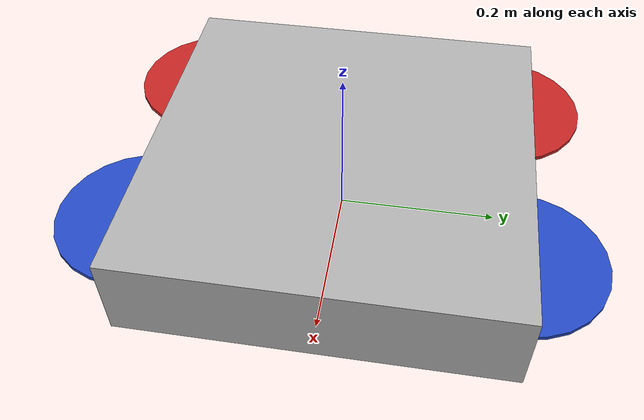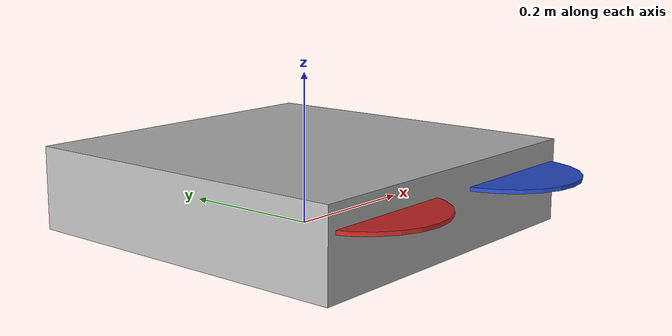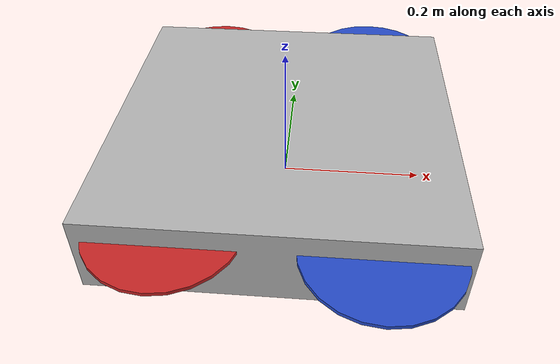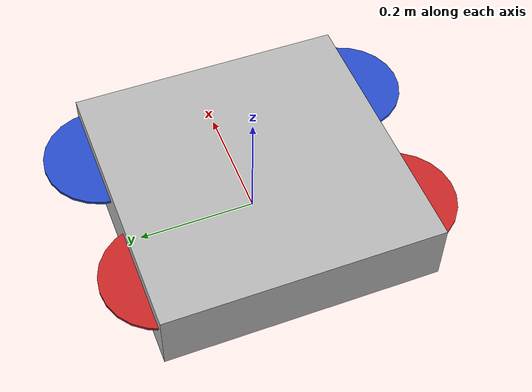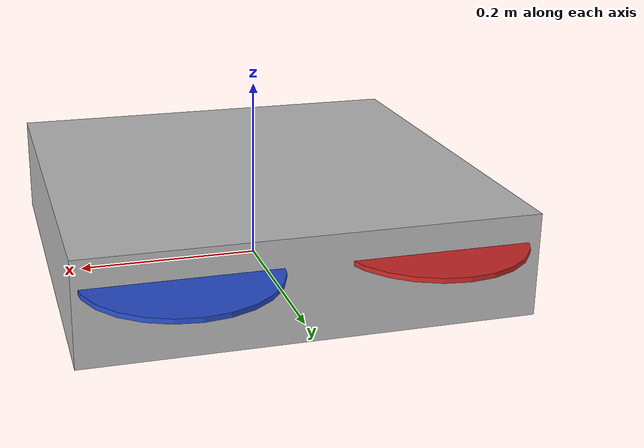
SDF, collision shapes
<?xml version='1.0'?>
<sdf version='1.6'>
  <model name='x3'>
    <pose>0 0 0.053302 0 0 0</pose>
    <link name='X3/base_link'>
      <pose frame=''>0 0 0 0 -0 0</pose>
      <inertial>
        <pose frame=''>0 0 0 0 -0 0</pose>
        <mass>1.5</mass>
        <inertia>
          <ixx>0.0347563</ixx>
          <ixy>0</ixy>
          <ixz>0</ixz>
          <iyy>0.07</iyy>
          <iyz>0</iyz>
          <izz>0.0977</izz>
        </inertia>
      </inertial>
      <collision name='X3/base_link_inertia_collision'>
        <pose frame=''>0 0 0 0 -0 0</pose>
        <geometry>
          <box>
            <size>0.47 0.47 0.11</size>
          </box>
        </geometry>
      </collision>
      <visual name='X3/base_link_inertia_visual'>
        <pose frame=''>0 0 0 0 -0 0</pose>
        <geometry>
          <mesh>
            <scale>1 1 1</scale>
            <uri>file:///home/viktor/BMSTU/nir_ws/gazebo_world/models/uav/meshes/x3.dae</uri>
          </mesh>
        </geometry>
      </visual>
    </link>
    <link name='X3/rotor_0'>
      <pose frame=''>0.13 -0.22 0.023 0 -0 0</pose>
      <inertial>
        <pose frame=''>0 0 0 0 -0 0</pose>
        <mass>0.005</mass>
        <inertia>
          <ixx>9.75e-07</ixx>
          <ixy>0</ixy>
          <ixz>0</ixz>
          <iyy>4.17041e-05</iyy>
          <iyz>0</iyz>
          <izz>4.26041e-05</izz>
        </inertia>
      </inertial>
      <collision name='X3/rotor_0_collision'>
        <pose frame=''>0 0 0 0 -0 0</pose>
        <geometry>
          <cylinder>
            <length>0.005</length>
            <radius>0.1</radius>
          </cylinder>
        </geometry>
        <surface>
          <contact>
            <ode/>
          </contact>
          <friction>
            <ode/>
          </friction>
        </surface>
      </collision>
      <visual name='X3/rotor_0_visual'>
        <pose frame=''>0 0 0 0 -0 0</pose>
        <geometry>
          <mesh>
            <scale>0.1 0.1 0.1</scale>
            <uri>file:///home/viktor/BMSTU/nir_ws/gazebo_world/models/uav/meshes/propeller_ccw.dae</uri>
          </mesh>
        </geometry>
        <material>
          <script>
            <name>Gazebo/Blue</name>
            <uri>file://media/materials/scripts/gazebo.material</uri>
          </script>
        </material>
      </visual>
      <gravity>1</gravity>
      <velocity_decay/>
    </link>
    <joint name='X3/rotor_0_joint' type='revolute'>
      <child>X3/rotor_0</child>
      <parent>X3/base_link</parent>
      <axis>
        <xyz>0 0 1</xyz>
        <limit>
          <lower>-1e+16</lower>
          <upper>1e+16</upper>
        </limit>
        <dynamics>
          <spring_reference>0</spring_reference>
          <spring_stiffness>0</spring_stiffness>
        </dynamics>
        <use_parent_model_frame>1</use_parent_model_frame>
      </axis>
    </joint>
    <link name='X3/rotor_1'>
      <pose frame=''>-0.13 0.2 0.023 0 -0 0</pose>
      <inertial>
        <pose frame=''>0 0 0 0 -0 0</pose>
        <mass>0.005</mass>
        <inertia>
          <ixx>9.75e-07</ixx>
          <ixy>0</ixy>
          <ixz>0</ixz>
          <iyy>4.17041e-05</iyy>
          <iyz>0</iyz>
          <izz>4.26041e-05</izz>
        </inertia>
      </inertial>
      <collision name='X3/rotor_1_collision'>
        <pose frame=''>0 0 0 0 -0 0</pose>
        <geometry>
          <cylinder>
            <length>0.005</length>
            <radius>0.1</radius>
          </cylinder>
        </geometry>
        <surface>
          <contact>
            <ode/>
          </contact>
          <friction>
            <ode/>
          </friction>
        </surface>
      </collision>
      <visual name='X3/rotor_1_visual'>
        <pose frame=''>0 0 0 0 -0 0</pose>
        <geometry>
          <mesh>
            <scale>0.1 0.1 0.1</scale>
            <uri>file:///home/viktor/BMSTU/nir_ws/gazebo_world/models/uav/meshes/propeller_ccw.dae</uri>
          </mesh>
        </geometry>
        <material>
          <script>
            <name>Gazebo/Red</name>
            <uri>file://media/materials/scripts/gazebo.material</uri>
          </script>
        </material>
      </visual>
      <gravity>1</gravity>
      <velocity_decay/>
    </link>
    <joint name='X3/rotor_1_joint' type='revolute'>
      <child>X3/rotor_1</child>
      <parent>X3/base_link</parent>
      <axis>
        <xyz>0 0 1</xyz>
        <limit>
          <lower>-1e+16</lower>
          <upper>1e+16</upper>
        </limit>
        <dynamics>
          <spring_reference>0</spring_reference>
          <spring_stiffness>0</spring_stiffness>
        </dynamics>
        <use_parent_model_frame>1</use_parent_model_frame>
      </axis>
    </joint>
    <link name='X3/rotor_2'>
      <pose frame=''>0.13 0.22 0.023 0 -0 0</pose>
      <inertial>
        <pose frame=''>0 0 0 0 -0 0</pose>
        <mass>0.005</mass>
        <inertia>
          <ixx>9.75e-07</ixx>
          <ixy>0</ixy>
          <ixz>0</ixz>
          <iyy>4.17041e-05</iyy>
          <iyz>0</iyz>
          <izz>4.26041e-05</izz>
        </inertia>
      </inertial>
      <collision name='X3/rotor_2_collision'>
        <pose frame=''>0 0 0 0 -0 0</pose>
        <geometry>
          <cylinder>
            <length>0.005</length>
            <radius>0.1</radius>
          </cylinder>
        </geometry>
        <surface>
          <contact>
            <ode/>
          </contact>
          <friction>
            <ode/>
          </friction>
        </surface>
      </collision>
      <visual name='X3/rotor_2_visual'>
        <pose frame=''>0 0 0 0 -0 0</pose>
        <geometry>
          <mesh>
            <scale>0.1 0.1 0.1</scale>
            <uri>file:///home/viktor/BMSTU/nir_ws/gazebo_world/models/uav/meshes/propeller_cw.dae</uri>
          </mesh>
        </geometry>
        <material>
          <script>
            <name>Gazebo/Blue</name>
            <uri>file://media/materials/scripts/gazebo.material</uri>
          </script>
        </material>
      </visual>
      <gravity>1</gravity>
      <velocity_decay/>
    </link>
    <joint name='X3/rotor_2_joint' type='revolute'>
      <child>X3/rotor_2</child>
      <parent>X3/base_link</parent>
      <axis>
        <xyz>0 0 1</xyz>
        <limit>
          <lower>-1e+16</lower>
          <upper>1e+16</upper>
        </limit>
        <dynamics>
          <spring_reference>0</spring_reference>
          <spring_stiffness>0</spring_stiffness>
        </dynamics>
        <use_parent_model_frame>1</use_parent_model_frame>
      </axis>
    </joint>
    <link name='X3/rotor_3'>
      <pose frame=''>-0.13 -0.2 0.023 0 -0 0</pose>
      <inertial>
        <pose frame=''>0 0 0 0 -0 0</pose>
        <mass>0.005</mass>
        <inertia>
          <ixx>9.75e-07</ixx>
          <ixy>0</ixy>
          <ixz>0</ixz>
          <iyy>4.17041e-05</iyy>
          <iyz>0</iyz>
          <izz>4.26041e-05</izz>
        </inertia>
      </inertial>
      <collision name='X3/rotor_3_collision'>
        <pose frame=''>0 0 0 0 -0 0</pose>
        <geometry>
          <cylinder>
            <length>0.005</length>
            <radius>0.1</radius>
          </cylinder>
        </geometry>
        <surface>
          <contact>
            <ode/>
          </contact>
          <friction>
            <ode/>
          </friction>
        </surface>
      </collision>
      <visual name='X3/rotor_3_visual'>
        <pose frame=''>0 0 0 0 -0 0</pose>
        <geometry>
          <mesh>
            <scale>0.1 0.1 0.1</scale>
            <uri>file:///home/viktor/BMSTU/nir_ws/gazebo_world/models/uav/meshes/propeller_cw.dae</uri>
          </mesh>
        </geometry>
        <material>
          <script>
            <name>Gazebo/Red</name>
            <uri>file://media/materials/scripts/gazebo.material</uri>
          </script>
        </material>
      </visual>
      <gravity>1</gravity>
      <velocity_decay/>
    </link>
    <joint name='X3/rotor_3_joint' type='revolute'>
      <child>X3/rotor_3</child>
      <parent>X3/base_link</parent>
      <axis>
        <xyz>0 0 1</xyz>
        <limit>
          <lower>-1e+16</lower>
          <upper>1e+16</upper>
        </limit>
        <dynamics>
          <spring_reference>0</spring_reference>
          <spring_stiffness>0</spring_stiffness>
        </dynamics>
        <use_parent_model_frame>1</use_parent_model_frame>
      </axis>
    </joint>

    <link name="X3/camera_link">
      <pose>0 0 -0.05 0 1 0</pose>
      <inertial>
        <mass>0.0000000001</mass>
        <inertia>
          <ixx>0.0000000001</ixx>
          <iyy>0.0000000001</iyy>
          <izz>0.0000000001</izz>
        </inertia>
      </inertial>
      <collision name="X3/camera_collision">
        <geometry>
          <box><size>0.02 0.02 0.02</size></box>
        </geometry>
      </collision>
      <visual name="X3/camera_visual">
        <geometry>
          <box><size>0.02 0.02 0.02</size></box>
        </geometry>
        <material>
            <ambient>0 1 0 1</ambient>
            <diffuse>0 1 0 1</diffuse>
            <specular>0 1 0 1</specular>
        </material>
      </visual>
      <sensor name="X3/camera" type="camera">
        <camera>
          <horizontal_fov>1.047</horizontal_fov>
          <image>
            <width>320</width>
            <height>240</height>
          </image>
          <clip>
            <near>0.1</near>
            <far>100</far>
          </clip>
        </camera>
        <always_on>1</always_on>
        <update_rate>5</update_rate>
        <visualize>true</visualize>
        <topic>/X3/camera</topic>
      </sensor>
    </link>

    <joint name="X3/camera_joint" type="fixed">
      <parent>X3/base_link</parent>
      <child>X3/camera_link</child>
      <pose>0.2 0 0.1 0 0 0</pose>
    </joint>
  </model>
</sdf>
